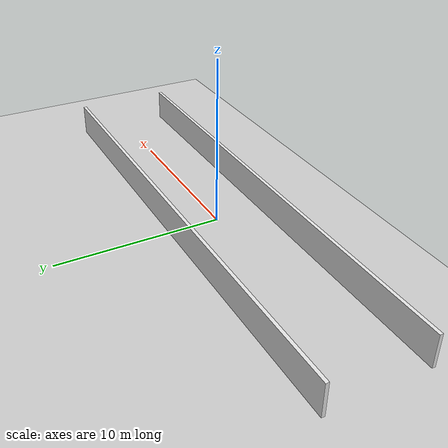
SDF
<?xml version='1.0' encoding='utf-8'?>
<sdf version="1.6">
  <world name="empty_hallway">
    <gravity>0 0 -9.8</gravity>

    <!-- FAST physics for testing -->
    <physics type="ode">
      <max_step_size>0.01</max_step_size>
      <real_time_factor>1</real_time_factor>
      <real_time_update_rate>100</real_time_update_rate>
    </physics>

    <scene>
      <ambient>0.6 0.6 0.6 1</ambient>
      <background>0.4 0.4 0.4 1</background>
      <shadows>false</shadows>
    </scene>

    <include>
      <uri>model://sun</uri>
    </include>

    <include>
      <uri>model://ground_plane</uri>
    </include>

    <!-- Left Wall (30m long hallway) -->
    <model name="left_wall">
      <static>true</static>
      <pose>0 -3 1 0 0 0</pose>
      <link name="link">
        <collision name="collision">
          <geometry>
            <box>
              <size>30 0.2 2</size>
            </box>
          </geometry>
        </collision>
        <visual name="visual">
          <geometry>
            <box>
              <size>30 0.2 2</size>
            </box>
          </geometry>
          <material>
            <ambient>0.9 0.9 0.9 1</ambient>
            <diffuse>0.9 0.9 0.9 1</diffuse>
          </material>
        </visual>
      </link>
    </model>

    <!-- Right Wall -->
    <model name="right_wall">
      <static>true</static>
      <pose>0 3 1 0 0 0</pose>
      <link name="link">
        <collision name="collision">
          <geometry>
            <box>
              <size>30 0.2 2</size>
            </box>
          </geometry>
        </collision>
        <visual name="visual">
          <geometry>
            <box>
              <size>30 0.2 2</size>
            </box>
          </geometry>
          <material>
            <ambient>0.9 0.9 0.9 1</ambient>
            <diffuse>0.9 0.9 0.9 1</diffuse>
          </material>
        </visual>
      </link>
    </model>

  </world>
</sdf>
